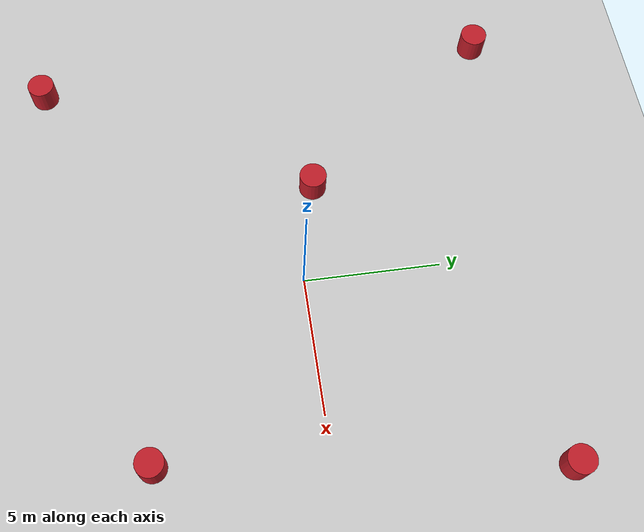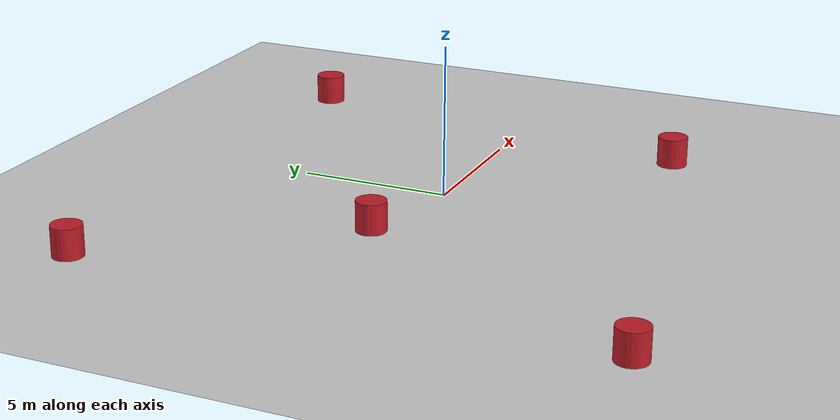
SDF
<sdf version="1.7">
 <world name="default">
  <light name="sun" type="directional">
   <pose>0 0 10 0 -0 0</pose>
   <diffuse>0.8 0.8 0.8 1</diffuse>
   <specular>0.2 0.2 0.2 1</specular>
   <attenuation>
    <range>1000</range>
    <constant>0.9</constant>
    <linear>0.01</linear>
    <quadratic>0.001</quadratic>
   </attenuation>
   <direction>-0.5 0.1 -0.9</direction>
   <spot><inner_angle>0</inner_angle><outer_angle>0</outer_angle><falloff>0</falloff></spot>
  </light>
  <model name="ground_plane">
   <static>1</static>
   <link name="link">
    <collision name="collision">
     <geometry><plane><normal>0 0 1</normal><size>100 100</size></plane></geometry>
     <surface><friction><ode><mu>100</mu><mu2>50</mu2></ode></friction></surface>
    </collision>
    <visual name="visual">
     <cast_shadows>0</cast_shadows>
     <geometry><plane><normal>0 0 1</normal><size>100 100</size></plane></geometry>
     <material>
      <script><uri>file://media/materials/scripts/gazebo.material</uri><name>Gazebo/Grey</name></script>
     </material>
    </visual>
   </link>
  </model>
  <gravity>0 0 -9.8</gravity>
  <magnetic_field>6e-06 2.3e-05 -4.2e-05</magnetic_field>
  <atmosphere type="adiabatic"/>
  <physics type="ode">
   <max_step_size>0.001</max_step_size>
   <real_time_factor>1</real_time_factor>
   <real_time_update_rate>1000</real_time_update_rate>
  </physics>
  <scene><ambient>0.4 0.4 0.4 1</ambient><background>0.7 0.7 0.7 1</background><shadows>1</shadows></scene>
  <audio><device>default</device></audio>
  <spherical_coordinates>
   <surface_model>EARTH_WGS84</surface_model>
   <latitude_deg>0</latitude_deg>
   <longitude_deg>0</longitude_deg>
   <elevation>0</elevation>
   <heading_deg>0</heading_deg>
  </spherical_coordinates>
  <model name="STATE_A">
   <link name="link_0">
    <inertial>
     <mass>922.843</mass>
     <inertia><ixx>134.581</ixx><ixy>0</ixy><ixz>0</ixz><iyy>134.581</iyy><iyz>0</iyz><izz>115.355</izz></inertia>
    </inertial>
    <visual name="visual">
     <geometry><cylinder><radius>0.5</radius><length>1</length></cylinder></geometry>
     <material>
      <lighting>1</lighting>
      <script><uri>file://media/materials/scripts/gazebo.material</uri><name>Gazebo/Grey</name></script>
      <shader type="pixel"><normal_map>__default__</normal_map></shader>
      <ambient>0.753 0.11 0.157 1</ambient>
      <diffuse>0.7 0.7 0.7 1</diffuse>
      <specular>0.01 0.01 0.01 1</specular>
      <emissive>0 0 0 1</emissive>
     </material>
    </visual>
    <collision name="collision">
     <geometry><cylinder><radius>0.5</radius><length>1</length></cylinder></geometry>
     <surface>
      <friction>
       <ode><mu>1</mu><mu2>1</mu2><fdir1>0 0 0</fdir1><slip1>0</slip1><slip2>0</slip2></ode>
       <torsional>
        <coefficient>1</coefficient>
        <patch_radius>0</patch_radius>
        <surface_radius>0</surface_radius>
        <use_patch_radius>1</use_patch_radius>
        <ode><slip>0</slip></ode>
       </torsional>
      </friction>
      <bounce><restitution_coefficient>0</restitution_coefficient><threshold>1e+06</threshold></bounce>
      <contact>
       <collide_without_contact>0</collide_without_contact>
       <collide_without_contact_bitmask>1</collide_without_contact_bitmask>
       <collide_bitmask>1</collide_bitmask>
       <ode>
        <soft_cfm>0</soft_cfm>
        <soft_erp>0.2</soft_erp>
        <kp>1e+13</kp>
        <kd>1</kd>
        <max_vel>0.01</max_vel>
        <min_depth>0</min_depth>
       </ode>
       <bullet>
        <split_impulse>1</split_impulse>
        <split_impulse_penetration_threshold>-0.01</split_impulse_penetration_threshold>
        <soft_cfm>0</soft_cfm>
        <soft_erp>0.2</soft_erp>
        <kp>1e+13</kp>
        <kd>1</kd>
       </bullet>
      </contact>
     </surface>
    </collision>
   </link>
   <static>0</static>
   <pose>-9.31274 8.19055 0.499993 4e-06 4e-06 -0</pose>
  </model>
  <model name="STATE_B">
   <link name="link_0">
    <inertial>
     <mass>922.843</mass>
     <inertia><ixx>134.581</ixx><ixy>0</ixy><ixz>0</ixz><iyy>134.581</iyy><iyz>0</iyz><izz>115.355</izz></inertia>
    </inertial>
    <pose>-1.91329 3.16596 0.5 0 -0 0</pose>
    <visual name="visual">
     <geometry><cylinder><radius>0.5</radius><length>1</length></cylinder></geometry>
     <material>
      <lighting>1</lighting>
      <script><uri>file://media/materials/scripts/gazebo.material</uri><name>Gazebo/Grey</name></script>
      <shader type="pixel"><normal_map>__default__</normal_map></shader>
      <ambient>0.753 0.11 0.157 1</ambient>
      <diffuse>0.7 0.7 0.7 1</diffuse>
      <specular>0.01 0.01 0.01 1</specular>
      <emissive>0 0 0 1</emissive>
     </material>
    </visual>
    <collision name="collision">
     <geometry><cylinder><radius>0.5</radius><length>1</length></cylinder></geometry>
     <surface>
      <friction>
       <ode><mu>1</mu><mu2>1</mu2><fdir1>0 0 0</fdir1><slip1>0</slip1><slip2>0</slip2></ode>
       <torsional>
        <coefficient>1</coefficient>
        <patch_radius>0</patch_radius>
        <surface_radius>0</surface_radius>
        <use_patch_radius>1</use_patch_radius>
        <ode><slip>0</slip></ode>
       </torsional>
      </friction>
      <bounce><restitution_coefficient>0</restitution_coefficient><threshold>1e+06</threshold></bounce>
      <contact>
       <collide_without_contact>0</collide_without_contact>
       <collide_without_contact_bitmask>1</collide_without_contact_bitmask>
       <collide_bitmask>1</collide_bitmask>
       <ode>
        <soft_cfm>0</soft_cfm>
        <soft_erp>0.2</soft_erp>
        <kp>1e+13</kp>
        <kd>1</kd>
        <max_vel>0.01</max_vel>
        <min_depth>0</min_depth>
       </ode>
       <bullet>
        <split_impulse>1</split_impulse>
        <split_impulse_penetration_threshold>-0.01</split_impulse_penetration_threshold>
        <soft_cfm>0</soft_cfm>
        <soft_erp>0.2</soft_erp>
        <kp>1e+13</kp>
        <kd>1</kd>
       </bullet>
      </contact>
     </surface>
    </collision>
   </link>
   <static>0</static>
   <pose>9.63266 4.78613 1.2e-05 -1e-06 -9e-06 0</pose>
  </model>
  <model name="STATE_C">
   <link name="link_0">
    <inertial>
     <mass>922.843</mass>
     <inertia><ixx>134.581</ixx><ixy>0</ixy><ixz>0</ixz><iyy>134.581</iyy><iyz>0</iyz><izz>115.355</izz></inertia>
    </inertial>
    <visual name="visual">
     <geometry><cylinder><radius>0.5</radius><length>1</length></cylinder></geometry>
     <material>
      <lighting>1</lighting>
      <script><uri>file://media/materials/scripts/gazebo.material</uri><name>Gazebo/Grey</name></script>
      <shader type="pixel"><normal_map>__default__</normal_map></shader>
      <ambient>0.753 0.11 0.157 1</ambient>
      <diffuse>0.7 0.7 0.7 1</diffuse>
      <specular>0.01 0.01 0.01 1</specular>
      <emissive>0 0 0 1</emissive>
     </material>
    </visual>
    <collision name="collision">
     <geometry><cylinder><radius>0.5</radius><length>1</length></cylinder></geometry>
     <surface>
      <friction>
       <ode><mu>1</mu><mu2>1</mu2><fdir1>0 0 0</fdir1><slip1>0</slip1><slip2>0</slip2></ode>
       <torsional>
        <coefficient>1</coefficient>
        <patch_radius>0</patch_radius>
        <surface_radius>0</surface_radius>
        <use_patch_radius>1</use_patch_radius>
        <ode><slip>0</slip></ode>
       </torsional>
      </friction>
      <bounce><restitution_coefficient>0</restitution_coefficient><threshold>1e+06</threshold></bounce>
      <contact>
       <collide_without_contact>0</collide_without_contact>
       <collide_without_contact_bitmask>1</collide_without_contact_bitmask>
       <collide_bitmask>1</collide_bitmask>
       <ode>
        <soft_cfm>0</soft_cfm>
        <soft_erp>0.2</soft_erp>
        <kp>1e+13</kp>
        <kd>1</kd>
        <max_vel>0.01</max_vel>
        <min_depth>0</min_depth>
       </ode>
       <bullet>
        <split_impulse>1</split_impulse>
        <split_impulse_penetration_threshold>-0.01</split_impulse_penetration_threshold>
        <soft_cfm>0</soft_cfm>
        <soft_erp>0.2</soft_erp>
        <kp>1e+13</kp>
        <kd>1</kd>
       </bullet>
      </contact>
     </surface>
    </collision>
   </link>
   <static>0</static>
   <pose>-9.11179 -9.13372 0.499993 4e-06 4e-06 -0</pose>
  </model>
  <model name="STATE_D">
   <link name="link_0">
    <inertial>
     <mass>922.843</mass>
     <inertia><ixx>134.581</ixx><ixy>0</ixy><ixz>0</ixz><iyy>134.581</iyy><iyz>0</iyz><izz>115.355</izz></inertia>
    </inertial>
    <pose>-1.91329 3.16596 0.5 0 -0 0</pose>
    <visual name="visual">
     <geometry><cylinder><radius>0.5</radius><length>1</length></cylinder></geometry>
     <material>
      <lighting>1</lighting>
      <script><uri>file://media/materials/scripts/gazebo.material</uri><name>Gazebo/Grey</name></script>
      <shader type="pixel"><normal_map>__default__</normal_map></shader>
      <ambient>0.753 0.11 0.157 1</ambient>
      <diffuse>0.7 0.7 0.7 1</diffuse>
      <specular>0.01 0.01 0.01 1</specular>
      <emissive>0 0 0 1</emissive>
     </material>
    </visual>
    <collision name="collision">
     <geometry><cylinder><radius>0.5</radius><length>1</length></cylinder></geometry>
     <surface>
      <friction>
       <ode><mu>1</mu><mu2>1</mu2><fdir1>0 0 0</fdir1><slip1>0</slip1><slip2>0</slip2></ode>
       <torsional>
        <coefficient>1</coefficient>
        <patch_radius>0</patch_radius>
        <surface_radius>0</surface_radius>
        <use_patch_radius>1</use_patch_radius>
        <ode><slip>0</slip></ode>
       </torsional>
      </friction>
      <bounce><restitution_coefficient>0</restitution_coefficient><threshold>1e+06</threshold></bounce>
      <contact>
       <collide_without_contact>0</collide_without_contact>
       <collide_without_contact_bitmask>1</collide_without_contact_bitmask>
       <collide_bitmask>1</collide_bitmask>
       <ode>
        <soft_cfm>0</soft_cfm>
        <soft_erp>0.2</soft_erp>
        <kp>1e+13</kp>
        <kd>1</kd>
        <max_vel>0.01</max_vel>
        <min_depth>0</min_depth>
       </ode>
       <bullet>
        <split_impulse>1</split_impulse>
        <split_impulse_penetration_threshold>-0.01</split_impulse_penetration_threshold>
        <soft_cfm>0</soft_cfm>
        <soft_erp>0.2</soft_erp>
        <kp>1e+13</kp>
        <kd>1</kd>
       </bullet>
      </contact>
     </surface>
    </collision>
   </link>
   <static>0</static>
   <pose>-1.83322 -2.31604 -2.9e-05 4e-06 4e-06 -0</pose>
  </model>
  <model name="STATE_F">
   <link name="link_0">
    <inertial>
     <mass>922.843</mass>
     <inertia><ixx>134.581</ixx><ixy>0</ixy><ixz>0</ixz><iyy>134.581</iyy><iyz>0</iyz><izz>115.355</izz></inertia>
    </inertial>
    <visual name="visual">
     <geometry><cylinder><radius>0.5</radius><length>1</length></cylinder></geometry>
     <material>
      <lighting>1</lighting>
      <script><uri>file://media/materials/scripts/gazebo.material</uri><name>Gazebo/Grey</name></script>
      <shader type="pixel"><normal_map>__default__</normal_map></shader>
      <ambient>0.753 0.11 0.157 1</ambient>
      <diffuse>0.7 0.7 0.7 1</diffuse>
      <specular>0.01 0.01 0.01 1</specular>
      <emissive>0 0 0 1</emissive>
     </material>
    </visual>
    <collision name="collision">
     <geometry><cylinder><radius>0.5</radius><length>1</length></cylinder></geometry>
     <surface>
      <friction>
       <ode><mu>1</mu><mu2>1</mu2><fdir1>0 0 0</fdir1><slip1>0</slip1><slip2>0</slip2></ode>
       <torsional>
        <coefficient>1</coefficient>
        <patch_radius>0</patch_radius>
        <surface_radius>0</surface_radius>
        <use_patch_radius>1</use_patch_radius>
        <ode><slip>0</slip></ode>
       </torsional>
      </friction>
      <bounce><restitution_coefficient>0</restitution_coefficient><threshold>1e+06</threshold></bounce>
      <contact>
       <collide_without_contact>0</collide_without_contact>
       <collide_without_contact_bitmask>1</collide_without_contact_bitmask>
       <collide_bitmask>1</collide_bitmask>
       <ode>
        <soft_cfm>0</soft_cfm>
        <soft_erp>0.2</soft_erp>
        <kp>1e+13</kp>
        <kd>1</kd>
        <max_vel>0.01</max_vel>
        <min_depth>0</min_depth>
       </ode>
       <bullet>
        <split_impulse>1</split_impulse>
        <split_impulse_penetration_threshold>-0.01</split_impulse_penetration_threshold>
        <soft_cfm>0</soft_cfm>
        <soft_erp>0.2</soft_erp>
        <kp>1e+13</kp>
        <kd>1</kd>
       </bullet>
      </contact>
     </surface>
    </collision>
   </link>
   <static>0</static>
   <pose>6.00922 -5.89626 0.499993 4e-06 4e-06 -0</pose>
  </model>
 </world>
</sdf>
